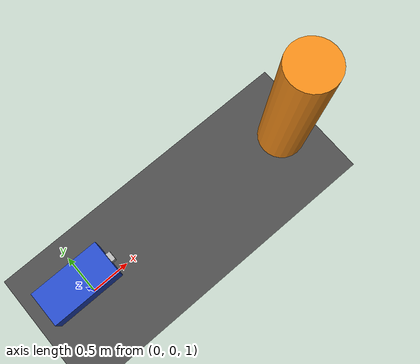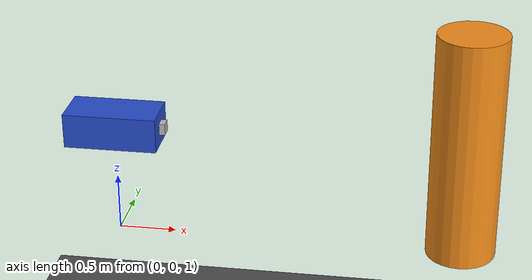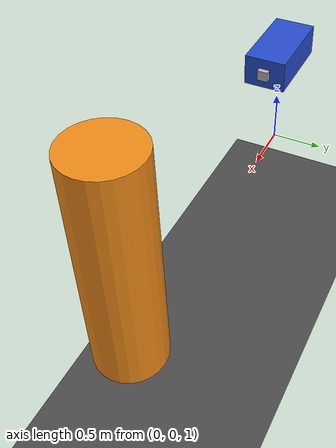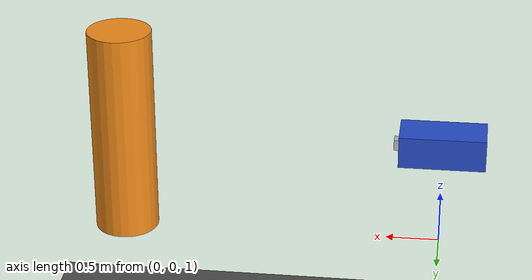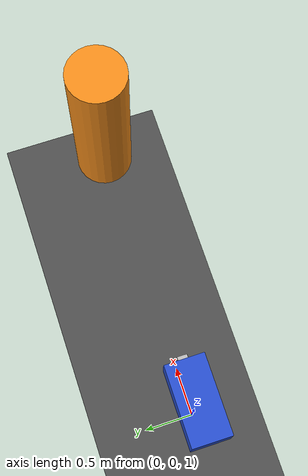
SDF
<?xml version="1.0"?>
<sdf version="1.6">
  <world name="underwater">
    <physics type="ode">
      <max_step_size>0.001</max_step_size>
      <real_time_factor>1.0</real_time_factor>
      <ode>
        <solver>
          <type>quick</type>
          <iters>100</iters>
        </solver>
      </ode>
    </physics>

    <scene>
      <ambient>0.1 0.1 0.1 1</ambient>
      <background>0.05 0.15 0.25 1</background>
      <shadows>true</shadows>
    </scene>

    <light name="sun" type="directional">
      <cast_shadows>true</cast_shadows>
      <pose>0 0 50 0 0 0</pose>
      <diffuse>0.7 0.7 0.7 1</diffuse>
      <specular>0.1 0.1 0.1 1</specular>
      <direction>0.1 0.1 -0.9</direction>
    </light>

    <!-- 海底平面 -->
    <model name="seabed">
      <static>true</static>
      <link name="link">
        <visual name="visual">
          <geometry>
            <plane>
              <normal>0 0 1</normal>
              <size>100 100</size>
            </plane>
          </geometry>
          <material>
            <script>
              <uri>file://media/materials/scripts/gazebo.material</uri>
              <name>Gazebo/DarkGrey</name>
            </script>
          </material>
        </visual>
      </link>
    </model>

    <!-- ROV 载体：演示场景设为静态，避免无浮力/推进器时沉到海底导致相机贴住海床 -->
    <model name="rov">
      <static>true</static>
      <pose>0 0 2 0 0 0</pose>
      <link name="base_link">
        <inertial>
          <mass>10</mass>
          <inertia>
            <ixx>0.1</ixx>
            <iyy>0.1</iyy>
            <izz>0.1</izz>
          </inertia>
        </inertial>
        <visual name="body">
          <geometry>
            <box>
              <size>0.8 0.4 0.3</size>
            </box>
          </geometry>
          <material>
            <script>
              <uri>file://media/materials/scripts/gazebo.material</uri>
              <name>Gazebo/Blue</name>
            </script>
          </material>
        </visual>
        <collision name="collision">
          <geometry>
            <box>
              <size>0.8 0.4 0.3</size>
            </box>
          </geometry>
        </collision>
      </link>

      <link name="sonar_camera_link">
        <pose>0.4 0 0 0 0 0</pose>
        <visual name="cam_vis">
          <geometry>
            <box>
              <size>0.1 0.1 0.1</size>
            </box>
          </geometry>
        </visual>
        <sensor name="sonar_camera" type="camera">
          <always_on>true</always_on>
          <update_rate>15</update_rate>
          <camera>
            <horizontal_fov>1.047</horizontal_fov>
            <image>
              <width>640</width>
              <height>480</height>
              <format>R8G8B8</format>
            </image>
            <clip>
              <near>0.1</near>
              <far>20</far>
            </clip>
          </camera>
          <!-- 实际话题 = 命名空间 + camera_name + /image_raw = /sonar/camera/image_raw -->
          <plugin name="camera_plugin" filename="libgazebo_ros_camera.so">
            <ros>
              <namespace>/sonar</namespace>
            </ros>
            <camera_name>camera</camera_name>
            <frame_name>sonar_camera_link</frame_name>
          </plugin>
        </sensor>
      </link>

      <joint name="cam_joint" type="fixed">
        <parent>base_link</parent>
        <child>sonar_camera_link</child>
      </joint>
    </model>

    <!-- 目标：管道 -->
    <model name="pipe_target">
      <static>true</static>
      <pose>3 0 2 0 0 0</pose>
      <link name="link">
        <visual name="visual">
          <geometry>
            <cylinder>
              <radius>0.3</radius>
              <length>2.0</length>
            </cylinder>
          </geometry>
          <material>
            <script>
              <uri>file://media/materials/scripts/gazebo.material</uri>
              <name>Gazebo/Orange</name>
            </script>
          </material>
        </visual>
      </link>
    </model>
  </world>
</sdf>
